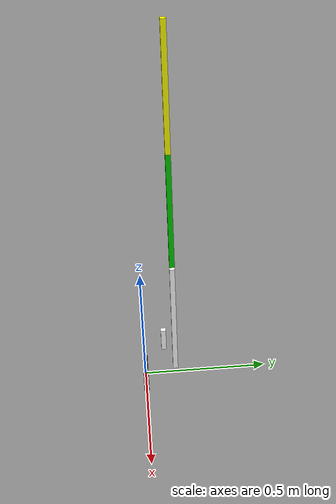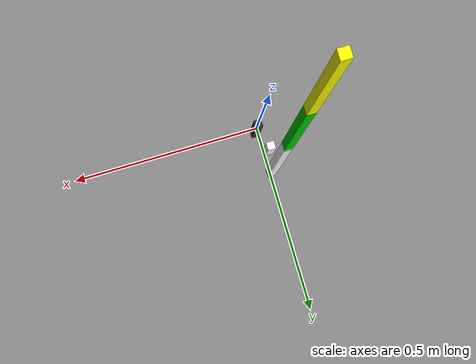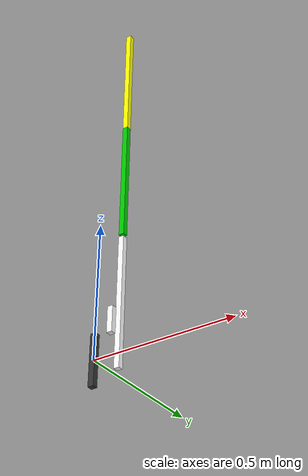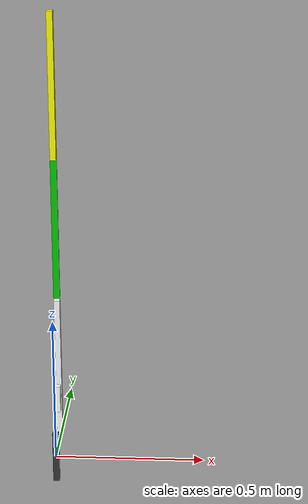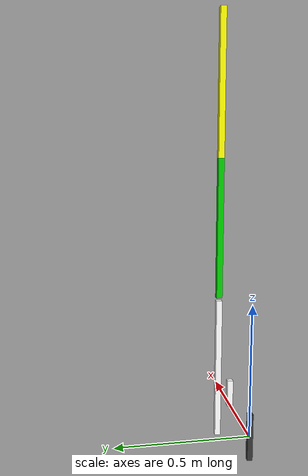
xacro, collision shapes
<?xml version="1.0"?>
<!-- Revolute-Revolute Manipulator -->

<robot xmlns:xacro="http://www.ros.org/wiki/xacro" name="rebearm">
  <xacro:arg name="prefix" default="" />

  <!-- Import rebearm macro -->
  <xacro:include filename="$(find rebearm_description)/xacro/rebearm_description.urdf.xacro" />

  <!-- Import Rviz colors -->
  <xacro:include filename="$(find rebearm_description)/xacro/rebearm.materials.xacro" />

  <!-- Import rebearm ros2_control description -->
  <xacro:include filename="$(find rebearm_description)/xacro/rebearm.ros2_control.xacro" />

  <!-- Used for fixing robot -->
  <link name="world"/>
  <gazebo reference="world">
    <static>true</static>
  </gazebo>

  <!-- World fixed joint-->
  <joint name="world_fixed" type="fixed">
    <origin xyz="0 0 0" rpy="0 0 0"/>
    <parent link="world"/>
    <child link="base_link"/>
  </joint>

  <xacro:rebearm parent="world" prefix="$(arg prefix)">
    <origin xyz="0 0 0" rpy="0 0 0" />
  </xacro:rebearm>

  <xacro:rebearm_ros2_control
    name="rebearm" prefix="$(arg prefix)" />

</robot>

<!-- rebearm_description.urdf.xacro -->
<robot xmlns:xacro="http://www.ros.org/wiki/xacro">

  <xacro:macro name="rebearm" params="parent prefix *origin">

  <!-- Constants for robot dimensions -->
  <xacro:property name="mass" value="1" /> <!-- arbitrary value for mass -->

  <xacro:property name="width0" value="0.02" /> <!-- Square dimensions (widthxwidth) -->
  <xacro:property name="height0" value="0.18" /> <!-- base link -->

  <xacro:property name="width1" value="0.02" /> <!-- Square dimensions (widthxwidth) -->
  <xacro:property name="height1" value="0.095" /> <!-- Link 1 -->
  <xacro:property name="offsety1" value="0.08" />

  <xacro:property name="width2" value="0.02" /> <!-- Square dimensions (widthxwidth) -->
  <xacro:property name="height2" value="0.5" /> <!-- Link 2 -->
  <xacro:property name="offsety2" value="0.045" />
  <xacro:property name="offsetz" value="-0.05" />

  <xacro:property name="width3" value="0.02" /> <!-- Square dimensions (widthxwidth) -->
  <xacro:property name="height3" value="0.48" /> <!-- Link 3 -->
  <xacro:property name="width4" value="0.02" /> <!-- Square dimensions (widthxwidth) -->
  <xacro:property name="height4" value="0.48" /> <!-- Link 4 -->

  <xacro:property name="offset34_y" value="-0.08" />
  <xacro:property name="offset34_z" value="-0.06" />
  <xacro:property name="axel_offset" value="0.05" /> <!-- Space btw top of beam and the each joint -->

  <!-- Base Link -->
  <link name="base_link">
    <collision>
      <origin xyz="0.0 0.0 0.0" rpy="0.0 0.0 0.0"/>
      <geometry>
        <box size="${width0} ${width0} ${height0}"/>
      </geometry>
    </collision>
    <visual>
      <origin xyz="0.0 0.0 0.0" rpy="0.0 0.0 0.0"/>
      <geometry>
        <mesh filename="package://rebearm_description/meshes/URDF_joint0.stl" scale="0.005 0.005 0.005"/>
      </geometry>
      <material name="grey"/>
    </visual>
    <inertial>
      <origin xyz="0.0 0.0 0.0" rpy="0.0 0.0 0.0"/>
      <mass value="1"/>
      <inertia ixx="1.0" ixy="0.0" ixz="0.0" iyy="1.0" iyz="0.0" izz="1.0"/>
    </inertial>
  </link>

  <!-- Joint 1, motor0, z origin = parent height -->
  <joint name="${prefix}joint1" type="revolute">
    <parent link="${prefix}base_link"/>
    <child link="${prefix}link1"/>
    <origin xyz="0 ${offsety1} ${height0}" rpy="0 0 0"/>
    <axis xyz="0 0 1"/>
    <dynamics damping="0.7"/>
    <limit velocity="4.8" effort="1" lower="${-pi*0.33}" upper="${pi*0.33}" />
  </joint>

  <!-- Link 1-->
  <link name="${prefix}link1">
    <collision>
			<origin rpy="0 0 0" xyz="0 0 0" />
			<geometry>
        <box size="${width1} ${width1} ${height1}"/>
      </geometry>
		</collision>
    <visual>
      <origin xyz="0.0 -${offsety1} 0.0" rpy="0.0 0.0 0"/>
      <geometry>
					<mesh filename="package://rebearm_description/meshes/URDF_joint1.stl" scale="0.005 0.005 0.005" />
      </geometry>
      <material name="white"/>
    </visual>
    <inertial>
      <origin xyz="0 0 ${height1/2}" rpy="0 0 0"/>
      <mass value="${mass}"/>
      <inertia
        ixx="${mass / 12.0 * (width1*width1 + height1*height1)}" ixy="0.0" ixz="0.0"
        iyy="${mass / 12.0 * (height1*height1 + width1*width1)}" iyz="0.0"
        izz="${mass / 12.0 * (width1*width1 + width1*width1)}"/>
      </inertial>
    </link>

  <!-- Joint 2, motor1, z origin = parent height -->
  <joint name="${prefix}joint2" type="revolute">
    <parent link="${prefix}link1"/>
    <child link="${prefix}link2"/>
    <origin xyz="0 ${offsety2} ${height1}" rpy="0 0 0"/>
    <filename xyz="0 1 0"/>
    <dynamics damping="0.7"/>
    <limit velocity="4.8" effort="1" lower="${-pi*0.2}" upper="${pi*0.1}" />
  </joint>

  <!-- Link 2-->
  <link name="${prefix}link2">
    <collision>
      <origin xyz="0 0 0" rpy="0 0 0"/>
      <geometry>
        <box size="${width2} ${width2} ${height2}"/>
      </geometry>
    </collision>

    <visual>
      <origin xyz="0.0 -0.08 ${offsetz}" rpy="0.0 0.0 0.0"/>
      <geometry>
        <mesh filename="package://rebearm_description/meshes/URDF_joint2.stl" scale="0.005 0.005 0.005" />
      </geometry>
      <material name="white"/>
    </visual>

    <inertial>
      <origin xyz="0 0 0" rpy="0 0 0"/>
      <mass value="${mass}"/>
      <inertia
        ixx="${mass / 12.0 * (width2*width2 + height2*height2)}" ixy="0.0" ixz="0.0"
        iyy="${mass / 12.0 * (height2*height2 + width2*width2)}" iyz="0.0"
        izz="${mass / 12.0 * (width2*width2 + width2*width2)}"/>
      </inertial>
    </link>

  <!-- Joint 3, motor2, z origin = parent height  -->
  <joint name="${prefix}joint3" type="revolute">
    <parent link="${prefix}link2"/>
    <child link="${prefix}link3"/>
    <origin xyz="0 0 ${height2}" rpy="0 0 0"/>
    <axis xyz="1 0 0"/>
    <dynamics damping="0.7"/>
    <limit velocity="4.8" effort="1" lower="${-pi*0.1}" upper="${pi*0.6}" />
  </joint>

  <!-- Link 3 -->
  <link name="${prefix}link3">
    <collision>
      <origin xyz="0 0 0" rpy="0 0 0"/>
      <geometry>
        <box size="${width3} ${width3} ${height3}"/>
      </geometry>
    </collision>

    <visual>
      <origin xyz="0.0 ${offset34_y} ${offset34_z}" rpy="0.0 0.0 0.0"/>
      <geometry>
        <mesh filename="package://rebearm_description/meshes/URDF_joint3.stl" scale="0.005 0.005 0.005" />
      </geometry>
      <material name="green"/>
    </visual>

    <inertial>
      <origin xyz="0 0 0" rpy="0 0 0"/>
      <mass value="${mass}"/>
      <inertia
        ixx="${mass / 12.0 * (width3*width3 + height3*height3)}" ixy="0.0" ixz="0.0"
        iyy="${mass / 12.0 * (height3*height3 + width3*width3)}" iyz="0.0"
        izz="${mass / 12.0 * (width3*width3 + width3*width3)}"/>
      </inertial>
    </link>

  <!-- Joint 4, motor3, z origin = parent height  -->
    <joint name="${prefix}joint4" type="revolute">
    <origin xyz="0 0 ${height3}" rpy="0 0 0" />
    <parent link="${prefix}link3"/>
    <child link="${prefix}link4" />
    <axis xyz="1 0 0"/>
    <dynamics damping="0.7"/>
    <limit velocity="4.8" effort="1" lower="${-pi*0.0}" upper="${pi*0.6}" />
  </joint>

  <!-- Link 4, motor+link+pump -->
  <link name="${prefix}link4">
  <collision>
    <origin xyz="0 0 0" rpy="0 0 0"/>
    <geometry>
      <box size="${width4} ${width4} ${height4}"/>
    </geometry>
  </collision>

  <visual>
    <origin xyz="0.0 ${offset34_y} ${offset34_z}" rpy="0.0 0.0 0.0"/>
    <geometry>
      <mesh filename="package://rebearm_description/meshes/URDF_joint4.stl" scale="0.005 0.005 0.005" />
    </geometry>
    <material name="yellow"/>
  </visual>

  <inertial>
    <origin xyz="0 0 0" rpy="0 0 0"/>
    <mass value="${mass}"/>
    <inertia
      ixx="${mass / 12.0 * (width4*width4 + height4*height4)}" ixy="0.0" ixz="0.0"
      iyy="${mass / 12.0 * (height4*height4 + width4*width4)}" iyz="0.0"
      izz="${mass / 12.0 * (width4*width4 + width4*width4)}"/>
    </inertial>
  </link>

  </xacro:macro>

</robot>

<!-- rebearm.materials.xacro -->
<!--
Copied from ROS1 example -
https://github.com/ros-simulation/gazebo_ros_demos/blob/kinetic-devel/rrbot_description/urdf/materials.xacro
-->
<robot>

  <material name="black">
    <color rgba="0.0 0.0 0.0 0.9"/>
  </material>

  <material name="blue">
    <color rgba="0.0 0.0 0.8 1.0"/>
  </material>

  <material name="green">
    <color rgba="0.0 0.8 0.0 1.0"/>
  </material>

  <material name="grey">
    <color rgba="0.2 0.2 0.2 0.9"/>
  </material>

  <material name="orange">
    <color rgba="${255/255} ${108/255} ${10/255} 0.9"/>
  </material>

  <material name="brown">
    <color rgba="${222/255} ${207/255} ${195/255} 0.9"/>
  </material>

  <material name="red">
    <color rgba="0.8 0.0 0.0 1.0"/>
  </material>

  <material name="yellow">
    <color rgba="1.0 1.0 0.0 0.9"/>
  </material>

  <material name="white">
    <color rgba="1.0 1.0 1.0 0.9"/>
  </material>

</robot>
